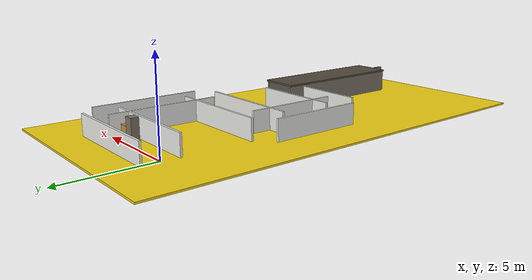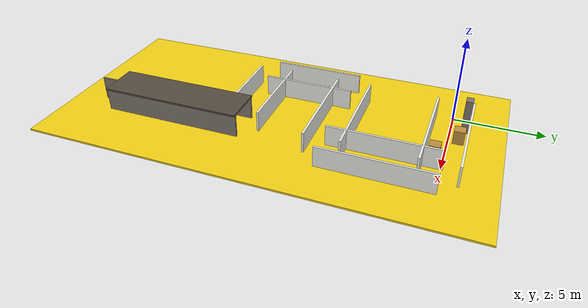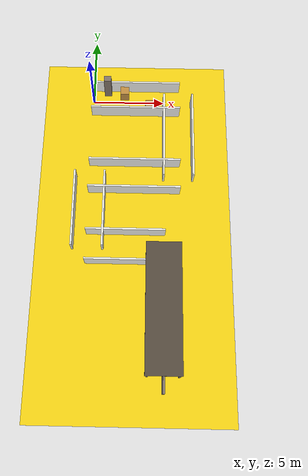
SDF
<?xml version="1.0" ?>
<sdf version="1.5">
  <world name="default">
    <include>
      <uri>model://sun</uri>
    </include>

    <model name="floor_yellow">
      <static>true</static>
      <pose>3.0 -9.5 -0.05 0 0 0</pose>
      <link name="link">
        <collision name="collision"><geometry><box><size>13.0 25.0 0.1</size></box></geometry></collision>
        <visual name="visual">
          <geometry><box><size>13.0 25.0 0.1</size></box></geometry>
          <material><ambient>0.95 0.82 0.08 1</ambient><diffuse>0.95 0.82 0.08 1</diffuse></material>
        </visual>
      </link>
    </model>

    <model name="wall_L_0">
      <static>true</static>
      <pose>3.000 1.000 0.600 0 0 0.0000</pose>
      <link name="link">
        <collision name="collision">
          <geometry><box><size>6.240 0.120 1.200</size></box></geometry>
        </collision>
        <visual name="visual">
          <geometry><box><size>6.240 0.120 1.200</size></box></geometry>
          <material><ambient>0.93 0.93 0.91 1</ambient><diffuse>0.93 0.93 0.91 1</diffuse></material>
        </visual>
      </link>
    </model>

    <model name="wall_R_0">
      <static>true</static>
      <pose>3.000 -1.000 0.600 0 0 0.0000</pose>
      <link name="link">
        <collision name="collision">
          <geometry><box><size>6.240 0.120 1.200</size></box></geometry>
        </collision>
        <visual name="visual">
          <geometry><box><size>6.240 0.120 1.200</size></box></geometry>
          <material><ambient>0.93 0.93 0.91 1</ambient><diffuse>0.93 0.93 0.91 1</diffuse></material>
        </visual>
      </link>
    </model>

    <model name="wall_L_1">
      <static>true</static>
      <pose>7.000 -3.000 0.600 0 0 -1.5708</pose>
      <link name="link">
        <collision name="collision">
          <geometry><box><size>6.240 0.120 1.200</size></box></geometry>
        </collision>
        <visual name="visual">
          <geometry><box><size>6.240 0.120 1.200</size></box></geometry>
          <material><ambient>0.93 0.93 0.91 1</ambient><diffuse>0.93 0.93 0.91 1</diffuse></material>
        </visual>
      </link>
    </model>

    <model name="wall_R_1">
      <static>true</static>
      <pose>5.000 -3.000 0.600 0 0 -1.5708</pose>
      <link name="link">
        <collision name="collision">
          <geometry><box><size>6.240 0.120 1.200</size></box></geometry>
        </collision>
        <visual name="visual">
          <geometry><box><size>6.240 0.120 1.200</size></box></geometry>
          <material><ambient>0.93 0.93 0.91 1</ambient><diffuse>0.93 0.93 0.91 1</diffuse></material>
        </visual>
      </link>
    </model>

    <model name="wall_L_2">
      <static>true</static>
      <pose>3.000 -7.000 0.600 0 0 3.1416</pose>
      <link name="link">
        <collision name="collision">
          <geometry><box><size>6.240 0.120 1.200</size></box></geometry>
        </collision>
        <visual name="visual">
          <geometry><box><size>6.240 0.120 1.200</size></box></geometry>
          <material><ambient>0.93 0.93 0.91 1</ambient><diffuse>0.93 0.93 0.91 1</diffuse></material>
        </visual>
      </link>
    </model>

    <model name="wall_R_2">
      <static>true</static>
      <pose>3.000 -5.000 0.600 0 0 3.1416</pose>
      <link name="link">
        <collision name="collision">
          <geometry><box><size>6.240 0.120 1.200</size></box></geometry>
        </collision>
        <visual name="visual">
          <geometry><box><size>6.240 0.120 1.200</size></box></geometry>
          <material><ambient>0.93 0.93 0.91 1</ambient><diffuse>0.93 0.93 0.91 1</diffuse></material>
        </visual>
      </link>
    </model>

    <model name="wall_L_3">
      <static>true</static>
      <pose>1.000 -8.500 0.600 0 0 -1.5708</pose>
      <link name="link">
        <collision name="collision">
          <geometry><box><size>5.240 0.120 1.200</size></box></geometry>
        </collision>
        <visual name="visual">
          <geometry><box><size>5.240 0.120 1.200</size></box></geometry>
          <material><ambient>0.93 0.93 0.91 1</ambient><diffuse>0.93 0.93 0.91 1</diffuse></material>
        </visual>
      </link>
    </model>

    <model name="wall_R_3">
      <static>true</static>
      <pose>-1.000 -8.500 0.600 0 0 -1.5708</pose>
      <link name="link">
        <collision name="collision">
          <geometry><box><size>5.240 0.120 1.200</size></box></geometry>
        </collision>
        <visual name="visual">
          <geometry><box><size>5.240 0.120 1.200</size></box></geometry>
          <material><ambient>0.93 0.93 0.91 1</ambient><diffuse>0.93 0.93 0.91 1</diffuse></material>
        </visual>
      </link>
    </model>

    <model name="wall_L_4">
      <static>true</static>
      <pose>2.500 -10.000 0.600 0 0 0.0000</pose>
      <link name="link">
        <collision name="collision">
          <geometry><box><size>5.240 0.120 1.200</size></box></geometry>
        </collision>
        <visual name="visual">
          <geometry><box><size>5.240 0.120 1.200</size></box></geometry>
          <material><ambient>0.93 0.93 0.91 1</ambient><diffuse>0.93 0.93 0.91 1</diffuse></material>
        </visual>
      </link>
    </model>

    <model name="wall_R_4">
      <static>true</static>
      <pose>2.500 -12.000 0.600 0 0 0.0000</pose>
      <link name="link">
        <collision name="collision">
          <geometry><box><size>5.240 0.120 1.200</size></box></geometry>
        </collision>
        <visual name="visual">
          <geometry><box><size>5.240 0.120 1.200</size></box></geometry>
          <material><ambient>0.93 0.93 0.91 1</ambient><diffuse>0.93 0.93 0.91 1</diffuse></material>
        </visual>
      </link>
    </model>

    <model name="wall_L_5">
      <static>true</static>
      <pose>6.000 -15.000 0.675 0 0 -1.5708</pose>
      <link name="link">
        <collision name="collision">
          <geometry><box><size>8.240 0.120 1.350</size></box></geometry>
        </collision>
        <visual name="visual">
          <geometry><box><size>8.240 0.120 1.350</size></box></geometry>
          <material><ambient>0.5 0.46 0.42 1</ambient><diffuse>0.5 0.46 0.42 1</diffuse></material>
        </visual>
      </link>
    </model>

    <model name="wall_R_5">
      <static>true</static>
      <pose>4.000 -15.000 0.675 0 0 -1.5708</pose>
      <link name="link">
        <collision name="collision">
          <geometry><box><size>8.240 0.120 1.350</size></box></geometry>
        </collision>
        <visual name="visual">
          <geometry><box><size>8.240 0.120 1.350</size></box></geometry>
          <material><ambient>0.5 0.46 0.42 1</ambient><diffuse>0.5 0.46 0.42 1</diffuse></material>
        </visual>
      </link>
    </model>

    <model name="gallery_roof_5">
      <static>true</static>
      <pose>5.000 -15.000 1.350 0 0 -1.5708</pose>
      <link name="link">
        <collision name="collision">
          <geometry><box><size>8.240 2.300 0.100</size></box></geometry>
        </collision>
        <visual name="visual">
          <geometry><box><size>8.240 2.300 0.100</size></box></geometry>
          <material><ambient>0.33 0.29 0.24 1</ambient><diffuse>0.33 0.29 0.24 1</diffuse></material>
        </visual>
      </link>
    </model>

    <model name="gallery_end_cap">
      <static>true</static>
      <pose>5.000 -19.000 0.675 0 0 1.5708</pose>
      <link name="link">
        <collision name="collision">
          <geometry><box><size>2.240 0.120 1.350</size></box></geometry>
        </collision>
        <visual name="visual">
          <geometry><box><size>2.240 0.120 1.350</size></box></geometry>
          <material><ambient>0.5 0.46 0.42 1</ambient><diffuse>0.5 0.46 0.42 1</diffuse></material>
        </visual>
      </link>
    </model>

    <model name="crate_0">
      <static>true</static>
      <pose>2.200 0.550 0.400 0 0 0</pose>
      <link name="link">
        <collision name="collision"><geometry><box><size>0.6 0.6 0.8</size></box></geometry></collision>
        <visual name="visual">
          <geometry><box><size>0.6 0.6 0.8</size></box></geometry>
          <material><ambient>0.75 0.55 0.25 1</ambient><diffuse>0.75 0.55 0.25 1</diffuse></material>
        </visual>
      </link>
    </model>

    <model name="crate_1">
      <static>true</static>
      <pose>4.000 -0.500 0.400 0 0 0</pose>
      <link name="link">
        <collision name="collision"><geometry><box><size>0.6 0.6 0.8</size></box></geometry></collision>
        <visual name="visual">
          <geometry><box><size>0.6 0.6 0.8</size></box></geometry>
          <material><ambient>0.75 0.55 0.25 1</ambient><diffuse>0.75 0.55 0.25 1</diffuse></material>
        </visual>
      </link>
    </model>

    <model name="shelf_0">
      <static>true</static>
      <pose>1.000 0.750 1.000 0 0 0</pose>
      <link name="link">
        <collision name="collision"><geometry><box><size>0.5 0.4 2.0</size></box></geometry></collision>
        <visual name="visual">
          <geometry><box><size>0.5 0.4 2.0</size></box></geometry>
          <material><ambient>0.5 0.45 0.4 1</ambient><diffuse>0.5 0.45 0.4 1</diffuse></material>
        </visual>
      </link>
    </model>

    <light name="gallery_lamp_0" type="point">
      <pose>5.0 -15.0 1.1 0 0 0</pose>
      <diffuse>1.0 0.75 0.45 1</diffuse>
      <specular>0.2 0.15 0.1 1</specular>
      <attenuation><range>8</range><constant>0.3</constant><linear>0.3</linear><quadratic>0.03</quadratic></attenuation>
      <cast_shadows>false</cast_shadows>
    </light>
    <light name="gallery_lamp_1" type="point">
      <pose>5.0 -18.0 1.1 0 0 0</pose>
      <diffuse>1.0 0.75 0.45 1</diffuse>
      <specular>0.2 0.15 0.1 1</specular>
      <attenuation><range>8</range><constant>0.3</constant><linear>0.3</linear><quadratic>0.03</quadratic></attenuation>
      <cast_shadows>false</cast_shadows>
    </light>

  </world>
</sdf>
